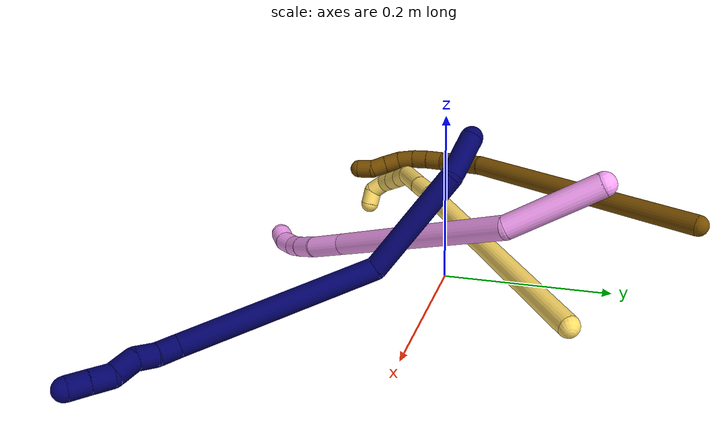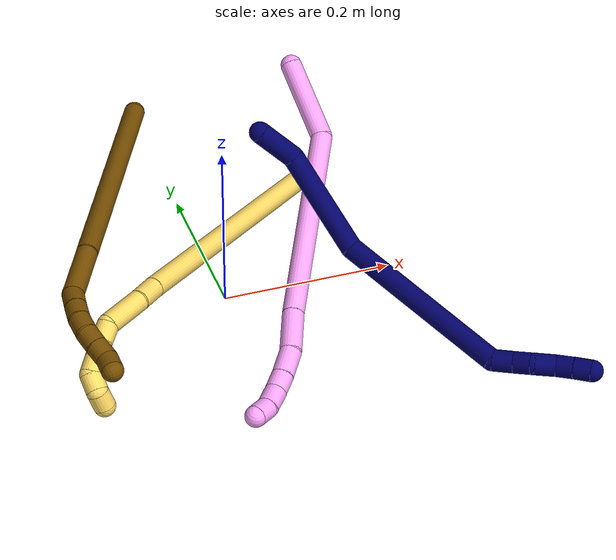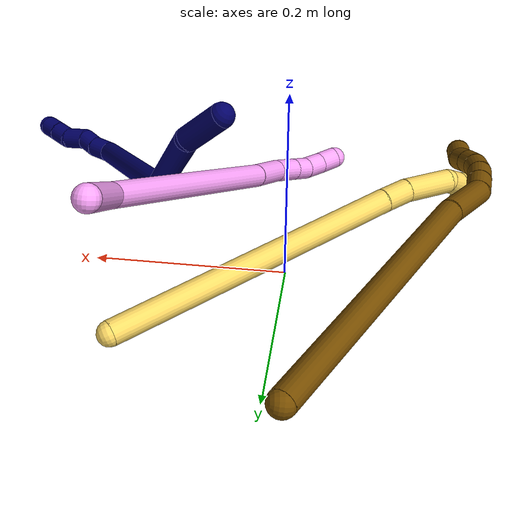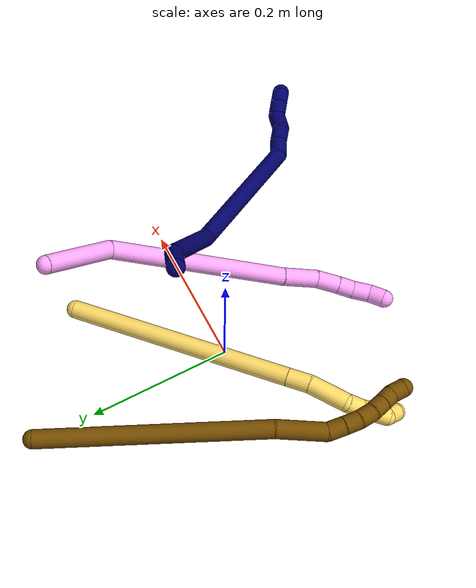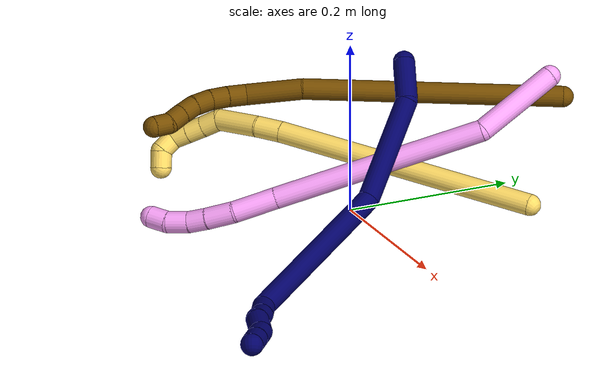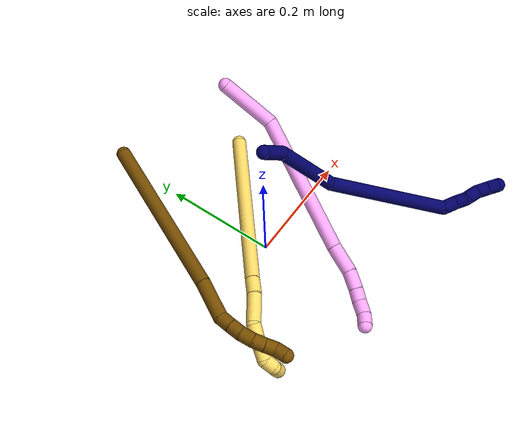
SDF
<sdf version="1.7">
 <world name="default">
  <model name="bin">
   <static>1</static>
   <link name="bottom">
    <collision name="collision-bottom">
     <pose>0 0 -0.01 0 -0 0</pose>
     <geometry><box><size>0.8 0.6 0.02</size></box></geometry>
     <surface>
      <friction><ode><mu>100</mu><mu2>100</mu2></ode></friction>
      <contact><collide_bitmask>65535</collide_bitmask></contact>
     </surface>
    </collision>
   </link>
   <link name="west_wall">
    <collision name="collision-west_wall">
     <pose>-0.41 0 0.1 0 -0 0</pose>
     <geometry><box><size>0.02 0.6 0.2</size></box></geometry>
     <surface>
      <friction><ode><mu>100</mu><mu2>100</mu2></ode></friction>
      <contact><collide_bitmask>65535</collide_bitmask></contact>
     </surface>
    </collision>
   </link>
   <link name="east_wall">
    <collision name="collision-east_wall">
     <pose>0.41 0 0.1 0 -0 0</pose>
     <geometry><box><size>0.02 0.6 0.2</size></box></geometry>
     <surface>
      <friction><ode><mu>100</mu><mu2>100</mu2></ode></friction>
      <contact><collide_bitmask>65535</collide_bitmask></contact>
     </surface>
    </collision>
   </link>
   <link name="south_wall">
    <collision name="collision-south_wall">
     <pose>0 -0.31 0.1 0 -0 0</pose>
     <geometry><box><size>0.8 0.02 0.2</size></box></geometry>
     <surface>
      <friction><ode><mu>100</mu><mu2>100</mu2></ode></friction>
      <contact><collide_bitmask>65535</collide_bitmask></contact>
     </surface>
    </collision>
   </link>
   <link name="north_wall">
    <collision name="collision-north_wall">
     <pose>0 0.31 0.1 0 -0 0</pose>
     <geometry><box><size>0.8 0.02 0.2</size></box></geometry>
     <surface>
      <friction><ode><mu>100</mu><mu2>100</mu2></ode></friction>
      <contact><collide_bitmask>65535</collide_bitmask></contact>
     </surface>
    </collision>
   </link>
  </model>
  <model name="4">
   <static>0</static>
   <link name="4">
    <collision name="collision-cylinder-e_1_1_4">
     <pose>0.004976 -0.049783 -0.00654 1.70141 0.098777 0.112574</pose>
     <geometry><cylinder><radius>0.0125</radius><length>0.100913</length></cylinder></geometry>
     <surface>
      <friction><ode><mu>1.16</mu><mu2>1.16</mu2><slip1>0</slip1><slip2>0</slip2></ode></friction>
      <contact><ode><kp>1e+06</kp><kd>1</kd><max_vel>0</max_vel><min_depth>0.001</min_depth></ode></contact>
     </surface>
    </collision>
    <visual name="visual-cylinder-e_1_1_4">
     <pose>0.004976 -0.049783 -0.00654 1.70141 0.098777 0.112574</pose>
     <geometry><cylinder><radius>0.0125</radius><length>0.100913</length></cylinder></geometry>
     <material><ambient>1 0.65098 0.996078 1</ambient></material>
    </visual>
    <collision name="collision-cylinder-e_2_4_5">
     <pose>-0.039783 -0.212521 -0.011963 1.56092 -0.41474 -0.410777</pose>
     <geometry><cylinder><radius>0.0125</radius><length>0.246849</length></cylinder></geometry>
     <surface>
      <friction><ode><mu>1.16</mu><mu2>1.16</mu2><slip1>0</slip1><slip2>0</slip2></ode></friction>
      <contact><ode><kp>1e+06</kp><kd>1</kd><max_vel>0</max_vel><min_depth>0.001</min_depth></ode></contact>
     </surface>
    </collision>
    <visual name="visual-cylinder-e_2_4_5">
     <pose>-0.039783 -0.212521 -0.011963 1.56092 -0.41474 -0.410777</pose>
     <geometry><cylinder><radius>0.0125</radius><length>0.246849</length></cylinder></geometry>
     <material><ambient>1 0.65098 0.996078 1</ambient></material>
    </visual>
    <collision name="collision-cylinder-e_3_5_6">
     <pose>-0.097735 -0.349049 -0.009866 1.52921 -0.335197 -0.32178</pose>
     <geometry><cylinder><radius>0.0125</radius><length>0.049968</length></cylinder></geometry>
     <surface>
      <friction><ode><mu>1.16</mu><mu2>1.16</mu2><slip1>0</slip1><slip2>0</slip2></ode></friction>
      <contact><ode><kp>1e+06</kp><kd>1</kd><max_vel>0</max_vel><min_depth>0.001</min_depth></ode></contact>
     </surface>
    </collision>
    <visual name="visual-cylinder-e_3_5_6">
     <pose>-0.097735 -0.349049 -0.009866 1.52921 -0.335197 -0.32178</pose>
     <geometry><cylinder><radius>0.0125</radius><length>0.049968</length></cylinder></geometry>
     <material><ambient>1 0.65098 0.996078 1</ambient></material>
    </visual>
    <collision name="collision-cylinder-e_4_6_7">
     <pose>-0.114601 -0.386536 -0.008553 1.54688 -0.555914 -0.543418</pose>
     <geometry><cylinder><radius>0.0125</radius><length>0.032769</length></cylinder></geometry>
     <surface>
      <friction><ode><mu>1.16</mu><mu2>1.16</mu2><slip1>0</slip1><slip2>0</slip2></ode></friction>
      <contact><ode><kp>1e+06</kp><kd>1</kd><max_vel>0</max_vel><min_depth>0.001</min_depth></ode></contact>
     </surface>
    </collision>
    <visual name="visual-cylinder-e_4_6_7">
     <pose>-0.114601 -0.386536 -0.008553 1.54688 -0.555914 -0.543418</pose>
     <geometry><cylinder><radius>0.0125</radius><length>0.032769</length></cylinder></geometry>
     <material><ambient>1 0.65098 0.996078 1</ambient></material>
    </visual>
    <collision name="collision-cylinder-e_5_7_8">
     <pose>-0.129799 -0.409412 -0.007817 1.52594 -0.630722 -0.604736</pose>
     <geometry><cylinder><radius>0.0125</radius><length>0.022219</length></cylinder></geometry>
     <surface>
      <friction><ode><mu>1.16</mu><mu2>1.16</mu2><slip1>0</slip1><slip2>0</slip2></ode></friction>
      <contact><ode><kp>1e+06</kp><kd>1</kd><max_vel>0</max_vel><min_depth>0.001</min_depth></ode></contact>
     </surface>
    </collision>
    <visual name="visual-cylinder-e_5_7_8">
     <pose>-0.129799 -0.409412 -0.007817 1.52594 -0.630722 -0.604736</pose>
     <geometry><cylinder><radius>0.0125</radius><length>0.022219</length></cylinder></geometry>
     <material><ambient>1 0.65098 0.996078 1</ambient></material>
    </visual>
    <collision name="collision-cylinder-e_6_8_9">
     <pose>-0.143971 -0.428289 -0.004565 1.29086 -0.636322 -0.486205</pose>
     <geometry><cylinder><radius>0.0125</radius><length>0.025649</length></cylinder></geometry>
     <surface>
      <friction><ode><mu>1.16</mu><mu2>1.16</mu2><slip1>0</slip1><slip2>0</slip2></ode></friction>
      <contact><ode><kp>1e+06</kp><kd>1</kd><max_vel>0</max_vel><min_depth>0.001</min_depth></ode></contact>
     </surface>
    </collision>
    <visual name="visual-cylinder-e_6_8_9">
     <pose>-0.143971 -0.428289 -0.004565 1.29086 -0.636322 -0.486205</pose>
     <geometry><cylinder><radius>0.0125</radius><length>0.025649</length></cylinder></geometry>
     <material><ambient>1 0.65098 0.996078 1</ambient></material>
    </visual>
    <collision name="collision-cylinder-e_7_9_2">
     <pose>-0.159887 -0.443947 0.002181 0.974889 -0.874001 -0.485485</pose>
     <geometry><cylinder><radius>0.0125</radius><length>0.021632</length></cylinder></geometry>
     <surface>
      <friction><ode><mu>1.16</mu><mu2>1.16</mu2><slip1>0</slip1><slip2>0</slip2></ode></friction>
      <contact><ode><kp>1e+06</kp><kd>1</kd><max_vel>0</max_vel><min_depth>0.001</min_depth></ode></contact>
     </surface>
    </collision>
    <visual name="visual-cylinder-e_7_9_2">
     <pose>-0.159887 -0.443947 0.002181 0.974889 -0.874001 -0.485485</pose>
     <geometry><cylinder><radius>0.0125</radius><length>0.021632</length></cylinder></geometry>
     <material><ambient>1 0.65098 0.996078 1</ambient></material>
    </visual>
    <collision name="collision-sphere-2">
     <pose>-0.168182 -0.449692 0.006076 0 -0 0</pose>
     <geometry><sphere><radius>0.0125</radius></sphere></geometry>
     <surface>
      <friction><ode><mu>1.16</mu><mu2>1.16</mu2><slip1>0</slip1><slip2>0</slip2></ode></friction>
      <contact><ode><kp>1e+06</kp><kd>1</kd><max_vel>0</max_vel><min_depth>0.001</min_depth></ode></contact>
     </surface>
    </collision>
    <visual name="visual-sphere-2">
     <pose>-0.168182 -0.449692 0.006076 0 -0 0</pose>
     <geometry><sphere><radius>0.0125</radius></sphere></geometry>
     <material><ambient>1 0.65098 0.996078 1</ambient></material>
    </visual>
    <collision name="collision-sphere-9">
     <pose>-0.151592 -0.438202 -0.001715 0 -0 0</pose>
     <geometry><sphere><radius>0.0125</radius></sphere></geometry>
     <surface>
      <friction><ode><mu>1.16</mu><mu2>1.16</mu2><slip1>0</slip1><slip2>0</slip2></ode></friction>
      <contact><ode><kp>1e+06</kp><kd>1</kd><max_vel>0</max_vel><min_depth>0.001</min_depth></ode></contact>
     </surface>
    </collision>
    <visual name="visual-sphere-9">
     <pose>-0.151592 -0.438202 -0.001715 0 -0 0</pose>
     <geometry><sphere><radius>0.0125</radius></sphere></geometry>
     <material><ambient>1 0.65098 0.996078 1</ambient></material>
    </visual>
    <collision name="collision-sphere-4">
     <pose>0.009952 -0.099565 -0.013079 0 -0 0</pose>
     <geometry><sphere><radius>0.0125</radius></sphere></geometry>
     <surface>
      <friction><ode><mu>1.16</mu><mu2>1.16</mu2><slip1>0</slip1><slip2>0</slip2></ode></friction>
      <contact><ode><kp>1e+06</kp><kd>1</kd><max_vel>0</max_vel><min_depth>0.001</min_depth></ode></contact>
     </surface>
    </collision>
    <visual name="visual-sphere-4">
     <pose>0.009952 -0.099565 -0.013079 0 -0 0</pose>
     <geometry><sphere><radius>0.0125</radius></sphere></geometry>
     <material><ambient>1 0.65098 0.996078 1</ambient></material>
    </visual>
    <collision name="collision-sphere-1">
     <geometry><sphere><radius>0.0125</radius></sphere></geometry>
     <surface>
      <friction><ode><mu>1.16</mu><mu2>1.16</mu2><slip1>0</slip1><slip2>0</slip2></ode></friction>
      <contact><ode><kp>1e+06</kp><kd>1</kd><max_vel>0</max_vel><min_depth>0.001</min_depth></ode></contact>
     </surface>
    </collision>
    <visual name="visual-sphere-1">
     <geometry><sphere><radius>0.0125</radius></sphere></geometry>
     <material><ambient>1 0.65098 0.996078 1</ambient></material>
    </visual>
    <collision name="collision-sphere-8">
     <pose>-0.13635 -0.418376 -0.007415 0 -0 0</pose>
     <geometry><sphere><radius>0.0125</radius></sphere></geometry>
     <surface>
      <friction><ode><mu>1.16</mu><mu2>1.16</mu2><slip1>0</slip1><slip2>0</slip2></ode></friction>
      <contact><ode><kp>1e+06</kp><kd>1</kd><max_vel>0</max_vel><min_depth>0.001</min_depth></ode></contact>
     </surface>
    </collision>
    <visual name="visual-sphere-8">
     <pose>-0.13635 -0.418376 -0.007415 0 -0 0</pose>
     <geometry><sphere><radius>0.0125</radius></sphere></geometry>
     <material><ambient>1 0.65098 0.996078 1</ambient></material>
    </visual>
    <collision name="collision-sphere-5">
     <pose>-0.089517 -0.325476 -0.010847 0 -0 0</pose>
     <geometry><sphere><radius>0.0125</radius></sphere></geometry>
     <surface>
      <friction><ode><mu>1.16</mu><mu2>1.16</mu2><slip1>0</slip1><slip2>0</slip2></ode></friction>
      <contact><ode><kp>1e+06</kp><kd>1</kd><max_vel>0</max_vel><min_depth>0.001</min_depth></ode></contact>
     </surface>
    </collision>
    <visual name="visual-sphere-5">
     <pose>-0.089517 -0.325476 -0.010847 0 -0 0</pose>
     <geometry><sphere><radius>0.0125</radius></sphere></geometry>
     <material><ambient>1 0.65098 0.996078 1</ambient></material>
    </visual>
    <collision name="collision-sphere-6">
     <pose>-0.105954 -0.372622 -0.008885 0 -0 0</pose>
     <geometry><sphere><radius>0.0125</radius></sphere></geometry>
     <surface>
      <friction><ode><mu>1.16</mu><mu2>1.16</mu2><slip1>0</slip1><slip2>0</slip2></ode></friction>
      <contact><ode><kp>1e+06</kp><kd>1</kd><max_vel>0</max_vel><min_depth>0.001</min_depth></ode></contact>
     </surface>
    </collision>
    <visual name="visual-sphere-6">
     <pose>-0.105954 -0.372622 -0.008885 0 -0 0</pose>
     <geometry><sphere><radius>0.0125</radius></sphere></geometry>
     <material><ambient>1 0.65098 0.996078 1</ambient></material>
    </visual>
    <collision name="collision-sphere-7">
     <pose>-0.123247 -0.400449 -0.00822 0 -0 0</pose>
     <geometry><sphere><radius>0.0125</radius></sphere></geometry>
     <surface>
      <friction><ode><mu>1.16</mu><mu2>1.16</mu2><slip1>0</slip1><slip2>0</slip2></ode></friction>
      <contact><ode><kp>1e+06</kp><kd>1</kd><max_vel>0</max_vel><min_depth>0.001</min_depth></ode></contact>
     </surface>
    </collision>
    <visual name="visual-sphere-7">
     <pose>-0.123247 -0.400449 -0.00822 0 -0 0</pose>
     <geometry><sphere><radius>0.0125</radius></sphere></geometry>
     <material><ambient>1 0.65098 0.996078 1</ambient></material>
    </visual>
    <inertial>
     <pose>-0.055985 -0.234556 -0.00926 0 -0 0</pose>
     <mass>0.5</mass>
     <inertia>
      <ixx>0.000694</ixx>
      <ixy>0</ixy>
      <ixz>0</ixz>
      <iyy>-0.000284</iyy>
      <iyz>0</iyz>
      <izz>0.001774</izz>
     </inertia>
    </inertial>
   </link>
   <pose>0.141756 0.181719 0.181929 0.375271 -0.034048 -0.038311</pose>
  </model>
  <model name="5">
   <static>0</static>
   <link name="5">
    <collision name="collision-cylinder-e_1_1_4">
     <pose>-0.035204 -0.045229 0.146288 0.299854 -0.225986 -0.03428</pose>
     <geometry><cylinder><radius>0.0125</radius><length>0.31423</length></cylinder></geometry>
     <surface>
      <friction><ode><mu>1.16</mu><mu2>1.16</mu2><slip1>0</slip1><slip2>0</slip2></ode></friction>
      <contact><ode><kp>1e+06</kp><kd>1</kd><max_vel>0</max_vel><min_depth>0.001</min_depth></ode></contact>
     </surface>
    </collision>
    <visual name="visual-cylinder-e_1_1_4">
     <pose>-0.035204 -0.045229 0.146288 0.299854 -0.225986 -0.03428</pose>
     <geometry><cylinder><radius>0.0125</radius><length>0.31423</length></cylinder></geometry>
     <material><ambient>1 0.858824 0.4 1</ambient></material>
    </visual>
    <collision name="collision-cylinder-e_2_4_5">
     <pose>-0.074577 -0.095113 0.30638 0.325244 -0.278676 -0.046013</pose>
     <geometry><cylinder><radius>0.0125</radius><length>0.030305</length></cylinder></geometry>
     <surface>
      <friction><ode><mu>1.16</mu><mu2>1.16</mu2><slip1>0</slip1><slip2>0</slip2></ode></friction>
      <contact><ode><kp>1e+06</kp><kd>1</kd><max_vel>0</max_vel><min_depth>0.001</min_depth></ode></contact>
     </surface>
    </collision>
    <visual name="visual-cylinder-e_2_4_5">
     <pose>-0.074577 -0.095113 0.30638 0.325244 -0.278676 -0.046013</pose>
     <geometry><cylinder><radius>0.0125</radius><length>0.030305</length></cylinder></geometry>
     <material><ambient>1 0.858824 0.4 1</ambient></material>
    </visual>
    <collision name="collision-cylinder-e_3_5_6">
     <pose>-0.088453 -0.104108 0.344292 0.178155 -0.37735 -0.034105</pose>
     <geometry><cylinder><radius>0.0125</radius><length>0.052697</length></cylinder></geometry>
     <surface>
      <friction><ode><mu>1.16</mu><mu2>1.16</mu2><slip1>0</slip1><slip2>0</slip2></ode></friction>
      <contact><ode><kp>1e+06</kp><kd>1</kd><max_vel>0</max_vel><min_depth>0.001</min_depth></ode></contact>
     </surface>
    </collision>
    <visual name="visual-cylinder-e_3_5_6">
     <pose>-0.088453 -0.104108 0.344292 0.178155 -0.37735 -0.034105</pose>
     <geometry><cylinder><radius>0.0125</radius><length>0.052697</length></cylinder></geometry>
     <material><ambient>1 0.858824 0.4 1</ambient></material>
    </visual>
    <collision name="collision-cylinder-e_4_6_7">
     <pose>-0.106264 -0.112085 0.374733 0.521065 -0.837156 -0.236094</pose>
     <geometry><cylinder><radius>0.0125</radius><length>0.021817</length></cylinder></geometry>
     <surface>
      <friction><ode><mu>1.16</mu><mu2>1.16</mu2><slip1>0</slip1><slip2>0</slip2></ode></friction>
      <contact><ode><kp>1e+06</kp><kd>1</kd><max_vel>0</max_vel><min_depth>0.001</min_depth></ode></contact>
     </surface>
    </collision>
    <visual name="visual-cylinder-e_4_6_7">
     <pose>-0.106264 -0.112085 0.374733 0.521065 -0.837156 -0.236094</pose>
     <geometry><cylinder><radius>0.0125</radius><length>0.021817</length></cylinder></geometry>
     <material><ambient>1 0.858824 0.4 1</ambient></material>
    </visual>
    <collision name="collision-cylinder-e_5_7_8">
     <pose>-0.121509 -0.119978 0.386845 0.635078 -0.783064 -0.269726</pose>
     <geometry><cylinder><radius>0.0125</radius><length>0.020249</length></cylinder></geometry>
     <surface>
      <friction><ode><mu>1.16</mu><mu2>1.16</mu2><slip1>0</slip1><slip2>0</slip2></ode></friction>
      <contact><ode><kp>1e+06</kp><kd>1</kd><max_vel>0</max_vel><min_depth>0.001</min_depth></ode></contact>
     </surface>
    </collision>
    <visual name="visual-cylinder-e_5_7_8">
     <pose>-0.121509 -0.119978 0.386845 0.635078 -0.783064 -0.269726</pose>
     <geometry><cylinder><radius>0.0125</radius><length>0.020249</length></cylinder></geometry>
     <material><ambient>1 0.858824 0.4 1</ambient></material>
    </visual>
    <collision name="collision-cylinder-e_6_8_9">
     <pose>-0.135799 -0.128398 0.398508 0.615471 -0.781109 -0.260227</pose>
     <geometry><cylinder><radius>0.0125</radius><length>0.020306</length></cylinder></geometry>
     <surface>
      <friction><ode><mu>1.16</mu><mu2>1.16</mu2><slip1>0</slip1><slip2>0</slip2></ode></friction>
      <contact><ode><kp>1e+06</kp><kd>1</kd><max_vel>0</max_vel><min_depth>0.001</min_depth></ode></contact>
     </surface>
    </collision>
    <visual name="visual-cylinder-e_6_8_9">
     <pose>-0.135799 -0.128398 0.398508 0.615471 -0.781109 -0.260227</pose>
     <geometry><cylinder><radius>0.0125</radius><length>0.020306</length></cylinder></geometry>
     <material><ambient>1 0.858824 0.4 1</ambient></material>
    </visual>
    <collision name="collision-cylinder-e_7_9_10">
     <pose>-0.150032 -0.139849 0.404206 1.59672 -0.770976 -0.789215</pose>
     <geometry><cylinder><radius>0.0125</radius><length>0.020333</length></cylinder></geometry>
     <surface>
      <friction><ode><mu>1.16</mu><mu2>1.16</mu2><slip1>0</slip1><slip2>0</slip2></ode></friction>
      <contact><ode><kp>1e+06</kp><kd>1</kd><max_vel>0</max_vel><min_depth>0.001</min_depth></ode></contact>
     </surface>
    </collision>
    <visual name="visual-cylinder-e_7_9_10">
     <pose>-0.150032 -0.139849 0.404206 1.59672 -0.770976 -0.789215</pose>
     <geometry><cylinder><radius>0.0125</radius><length>0.020333</length></cylinder></geometry>
     <material><ambient>1 0.858824 0.4 1</ambient></material>
    </visual>
    <collision name="collision-cylinder-e_8_10_2">
     <pose>-0.165501 -0.148914 0.398804 2.81326 -0.989672 -2.54588</pose>
     <geometry><cylinder><radius>0.0125</radius><length>0.020063</length></cylinder></geometry>
     <surface>
      <friction><ode><mu>1.16</mu><mu2>1.16</mu2><slip1>0</slip1><slip2>0</slip2></ode></friction>
      <contact><ode><kp>1e+06</kp><kd>1</kd><max_vel>0</max_vel><min_depth>0.001</min_depth></ode></contact>
     </surface>
    </collision>
    <visual name="visual-cylinder-e_8_10_2">
     <pose>-0.165501 -0.148914 0.398804 2.81326 -0.989672 -2.54588</pose>
     <geometry><cylinder><radius>0.0125</radius><length>0.020063</length></cylinder></geometry>
     <material><ambient>1 0.858824 0.4 1</ambient></material>
    </visual>
    <collision name="collision-sphere-2">
     <pose>-0.173886 -0.15069 0.393591 0 -0 0</pose>
     <geometry><sphere><radius>0.0125</radius></sphere></geometry>
     <surface>
      <friction><ode><mu>1.16</mu><mu2>1.16</mu2><slip1>0</slip1><slip2>0</slip2></ode></friction>
      <contact><ode><kp>1e+06</kp><kd>1</kd><max_vel>0</max_vel><min_depth>0.001</min_depth></ode></contact>
     </surface>
    </collision>
    <visual name="visual-sphere-2">
     <pose>-0.173886 -0.15069 0.393591 0 -0 0</pose>
     <geometry><sphere><radius>0.0125</radius></sphere></geometry>
     <material><ambient>1 0.858824 0.4 1</ambient></material>
    </visual>
    <collision name="collision-sphere-10">
     <pose>-0.157116 -0.147139 0.404017 0 -0 0</pose>
     <geometry><sphere><radius>0.0125</radius></sphere></geometry>
     <surface>
      <friction><ode><mu>1.16</mu><mu2>1.16</mu2><slip1>0</slip1><slip2>0</slip2></ode></friction>
      <contact><ode><kp>1e+06</kp><kd>1</kd><max_vel>0</max_vel><min_depth>0.001</min_depth></ode></contact>
     </surface>
    </collision>
    <visual name="visual-sphere-10">
     <pose>-0.157116 -0.147139 0.404017 0 -0 0</pose>
     <geometry><sphere><radius>0.0125</radius></sphere></geometry>
     <material><ambient>1 0.858824 0.4 1</ambient></material>
    </visual>
    <collision name="collision-sphere-9">
     <pose>-0.142948 -0.13256 0.404395 0 -0 0</pose>
     <geometry><sphere><radius>0.0125</radius></sphere></geometry>
     <surface>
      <friction><ode><mu>1.16</mu><mu2>1.16</mu2><slip1>0</slip1><slip2>0</slip2></ode></friction>
      <contact><ode><kp>1e+06</kp><kd>1</kd><max_vel>0</max_vel><min_depth>0.001</min_depth></ode></contact>
     </surface>
    </collision>
    <visual name="visual-sphere-9">
     <pose>-0.142948 -0.13256 0.404395 0 -0 0</pose>
     <geometry><sphere><radius>0.0125</radius></sphere></geometry>
     <material><ambient>1 0.858824 0.4 1</ambient></material>
    </visual>
    <collision name="collision-sphere-4">
     <pose>-0.070409 -0.090457 0.292576 0 -0 0</pose>
     <geometry><sphere><radius>0.0125</radius></sphere></geometry>
     <surface>
      <friction><ode><mu>1.16</mu><mu2>1.16</mu2><slip1>0</slip1><slip2>0</slip2></ode></friction>
      <contact><ode><kp>1e+06</kp><kd>1</kd><max_vel>0</max_vel><min_depth>0.001</min_depth></ode></contact>
     </surface>
    </collision>
    <visual name="visual-sphere-4">
     <pose>-0.070409 -0.090457 0.292576 0 -0 0</pose>
     <geometry><sphere><radius>0.0125</radius></sphere></geometry>
     <material><ambient>1 0.858824 0.4 1</ambient></material>
    </visual>
    <collision name="collision-sphere-1">
     <geometry><sphere><radius>0.0125</radius></sphere></geometry>
     <surface>
      <friction><ode><mu>1.16</mu><mu2>1.16</mu2><slip1>0</slip1><slip2>0</slip2></ode></friction>
      <contact><ode><kp>1e+06</kp><kd>1</kd><max_vel>0</max_vel><min_depth>0.001</min_depth></ode></contact>
     </surface>
    </collision>
    <visual name="visual-sphere-1">
     <geometry><sphere><radius>0.0125</radius></sphere></geometry>
     <material><ambient>1 0.858824 0.4 1</ambient></material>
    </visual>
    <collision name="collision-sphere-8">
     <pose>-0.128651 -0.124235 0.392621 0 -0 0</pose>
     <geometry><sphere><radius>0.0125</radius></sphere></geometry>
     <surface>
      <friction><ode><mu>1.16</mu><mu2>1.16</mu2><slip1>0</slip1><slip2>0</slip2></ode></friction>
      <contact><ode><kp>1e+06</kp><kd>1</kd><max_vel>0</max_vel><min_depth>0.001</min_depth></ode></contact>
     </surface>
    </collision>
    <visual name="visual-sphere-8">
     <pose>-0.128651 -0.124235 0.392621 0 -0 0</pose>
     <geometry><sphere><radius>0.0125</radius></sphere></geometry>
     <material><ambient>1 0.858824 0.4 1</ambient></material>
    </visual>
    <collision name="collision-sphere-5">
     <pose>-0.078745 -0.099768 0.320185 0 -0 0</pose>
     <geometry><sphere><radius>0.0125</radius></sphere></geometry>
     <surface>
      <friction><ode><mu>1.16</mu><mu2>1.16</mu2><slip1>0</slip1><slip2>0</slip2></ode></friction>
      <contact><ode><kp>1e+06</kp><kd>1</kd><max_vel>0</max_vel><min_depth>0.001</min_depth></ode></contact>
     </surface>
    </collision>
    <visual name="visual-sphere-5">
     <pose>-0.078745 -0.099768 0.320185 0 -0 0</pose>
     <geometry><sphere><radius>0.0125</radius></sphere></geometry>
     <material><ambient>1 0.858824 0.4 1</ambient></material>
    </visual>
    <collision name="collision-sphere-6">
     <pose>-0.098162 -0.108449 0.368398 0 -0 0</pose>
     <geometry><sphere><radius>0.0125</radius></sphere></geometry>
     <surface>
      <friction><ode><mu>1.16</mu><mu2>1.16</mu2><slip1>0</slip1><slip2>0</slip2></ode></friction>
      <contact><ode><kp>1e+06</kp><kd>1</kd><max_vel>0</max_vel><min_depth>0.001</min_depth></ode></contact>
     </surface>
    </collision>
    <visual name="visual-sphere-6">
     <pose>-0.098162 -0.108449 0.368398 0 -0 0</pose>
     <geometry><sphere><radius>0.0125</radius></sphere></geometry>
     <material><ambient>1 0.858824 0.4 1</ambient></material>
    </visual>
    <collision name="collision-sphere-7">
     <pose>-0.114366 -0.115721 0.381068 0 -0 0</pose>
     <geometry><sphere><radius>0.0125</radius></sphere></geometry>
     <surface>
      <friction><ode><mu>1.16</mu><mu2>1.16</mu2><slip1>0</slip1><slip2>0</slip2></ode></friction>
      <contact><ode><kp>1e+06</kp><kd>1</kd><max_vel>0</max_vel><min_depth>0.001</min_depth></ode></contact>
     </surface>
    </collision>
    <visual name="visual-sphere-7">
     <pose>-0.114366 -0.115721 0.381068 0 -0 0</pose>
     <geometry><sphere><radius>0.0125</radius></sphere></geometry>
     <material><ambient>1 0.858824 0.4 1</ambient></material>
    </visual>
    <inertial>
     <pose>-0.063782 -0.071788 0.227434 0 -0 0</pose>
     <mass>0.5</mass>
     <inertia>
      <ixx>0.002447</ixx>
      <ixy>0</ixy>
      <ixz>0</ixz>
      <iyy>0.002409</iyy>
      <iyz>0</iyz>
      <izz>0.001379</izz>
     </inertia>
    </inertial>
   </link>
   <pose>0.141245 0.159436 0.029675 -0.339027 -1.21714 0.745286</pose>
  </model>
  <model name="7">
   <static>0</static>
   <link name="7">
    <collision name="collision-cylinder-e_1_1_4">
     <pose>-0.002164 -0.004342 0.02467 0.174209 -0.086162 -0.007529</pose>
     <geometry><cylinder><radius>0.0125</radius><length>0.050286</length></cylinder></geometry>
     <surface>
      <friction><ode><mu>1.16</mu><mu2>1.16</mu2><slip1>0</slip1><slip2>0</slip2></ode></friction>
      <contact><ode><kp>1e+06</kp><kd>1</kd><max_vel>0</max_vel><min_depth>0.001</min_depth></ode></contact>
     </surface>
    </collision>
    <visual name="visual-cylinder-e_1_1_4">
     <pose>-0.002164 -0.004342 0.02467 0.174209 -0.086162 -0.007529</pose>
     <geometry><cylinder><radius>0.0125</radius><length>0.050286</length></cylinder></geometry>
     <material><ambient>0.003922 0 0.403922 1</ambient></material>
    </visual>
    <collision name="collision-cylinder-e_2_4_5">
     <pose>0.017569 -0.015424 0.106721 0.116925 0.362274 0.021438</pose>
     <geometry><cylinder><radius>0.0125</radius><length>0.123569</length></cylinder></geometry>
     <surface>
      <friction><ode><mu>1.16</mu><mu2>1.16</mu2><slip1>0</slip1><slip2>0</slip2></ode></friction>
      <contact><ode><kp>1e+06</kp><kd>1</kd><max_vel>0</max_vel><min_depth>0.001</min_depth></ode></contact>
     </surface>
    </collision>
    <visual name="visual-cylinder-e_2_4_5">
     <pose>0.017569 -0.015424 0.106721 0.116925 0.362274 0.021438</pose>
     <geometry><cylinder><radius>0.0125</radius><length>0.123569</length></cylinder></geometry>
     <material><ambient>0.003922 0 0.403922 1</ambient></material>
    </visual>
    <collision name="collision-cylinder-e_3_5_6">
     <pose>0.082151 -0.085525 0.237678 0.710934 0.414171 0.155676</pose>
     <geometry><cylinder><radius>0.0125</radius><length>0.212135</length></cylinder></geometry>
     <surface>
      <friction><ode><mu>1.16</mu><mu2>1.16</mu2><slip1>0</slip1><slip2>0</slip2></ode></friction>
      <contact><ode><kp>1e+06</kp><kd>1</kd><max_vel>0</max_vel><min_depth>0.001</min_depth></ode></contact>
     </surface>
    </collision>
    <visual name="visual-cylinder-e_3_5_6">
     <pose>0.082151 -0.085525 0.237678 0.710934 0.414171 0.155676</pose>
     <geometry><cylinder><radius>0.0125</radius><length>0.212135</length></cylinder></geometry>
     <material><ambient>0.003922 0 0.403922 1</ambient></material>
    </visual>
    <collision name="collision-cylinder-e_4_6_7">
     <pose>0.122992 -0.158576 0.318605 0.921851 -0.150438 -0.074814</pose>
     <geometry><cylinder><radius>0.0125</radius><length>0.024601</length></cylinder></geometry>
     <surface>
      <friction><ode><mu>1.16</mu><mu2>1.16</mu2><slip1>0</slip1><slip2>0</slip2></ode></friction>
      <contact><ode><kp>1e+06</kp><kd>1</kd><max_vel>0</max_vel><min_depth>0.001</min_depth></ode></contact>
     </surface>
    </collision>
    <visual name="visual-cylinder-e_4_6_7">
     <pose>0.122992 -0.158576 0.318605 0.921851 -0.150438 -0.074814</pose>
     <geometry><cylinder><radius>0.0125</radius><length>0.024601</length></cylinder></geometry>
     <material><ambient>0.003922 0 0.403922 1</ambient></material>
    </visual>
    <collision name="collision-cylinder-e_5_7_8">
     <pose>0.120952 -0.177574 0.330775 1.09301 -0.018794 -0.011433</pose>
     <geometry><cylinder><radius>0.0125</radius><length>0.020969</length></cylinder></geometry>
     <surface>
      <friction><ode><mu>1.16</mu><mu2>1.16</mu2><slip1>0</slip1><slip2>0</slip2></ode></friction>
      <contact><ode><kp>1e+06</kp><kd>1</kd><max_vel>0</max_vel><min_depth>0.001</min_depth></ode></contact>
     </surface>
    </collision>
    <visual name="visual-cylinder-e_5_7_8">
     <pose>0.120952 -0.177574 0.330775 1.09301 -0.018794 -0.011433</pose>
     <geometry><cylinder><radius>0.0125</radius><length>0.020969</length></cylinder></geometry>
     <material><ambient>0.003922 0 0.403922 1</ambient></material>
    </visual>
    <collision name="collision-cylinder-e_6_8_9">
     <pose>0.116265 -0.194939 0.345146 0.700727 -0.344948 -0.127151</pose>
     <geometry><cylinder><radius>0.0125</radius><length>0.026555</length></cylinder></geometry>
     <surface>
      <friction><ode><mu>1.16</mu><mu2>1.16</mu2><slip1>0</slip1><slip2>0</slip2></ode></friction>
      <contact><ode><kp>1e+06</kp><kd>1</kd><max_vel>0</max_vel><min_depth>0.001</min_depth></ode></contact>
     </surface>
    </collision>
    <visual name="visual-cylinder-e_6_8_9">
     <pose>0.116265 -0.194939 0.345146 0.700727 -0.344948 -0.127151</pose>
     <geometry><cylinder><radius>0.0125</radius><length>0.026555</length></cylinder></geometry>
     <material><ambient>0.003922 0 0.403922 1</ambient></material>
    </visual>
    <collision name="collision-cylinder-e_7_9_10">
     <pose>0.111487 -0.212145 0.360394 1.01386 -0.026707 -0.014832</pose>
     <geometry><cylinder><radius>0.0125</radius><length>0.021564</length></cylinder></geometry>
     <surface>
      <friction><ode><mu>1.16</mu><mu2>1.16</mu2><slip1>0</slip1><slip2>0</slip2></ode></friction>
      <contact><ode><kp>1e+06</kp><kd>1</kd><max_vel>0</max_vel><min_depth>0.001</min_depth></ode></contact>
     </surface>
    </collision>
    <visual name="visual-cylinder-e_7_9_10">
     <pose>0.111487 -0.212145 0.360394 1.01386 -0.026707 -0.014832</pose>
     <geometry><cylinder><radius>0.0125</radius><length>0.021564</length></cylinder></geometry>
     <material><ambient>0.003922 0 0.403922 1</ambient></material>
    </visual>
    <collision name="collision-cylinder-e_8_10_2">
     <pose>0.111147 -0.229808 0.371638 0.993366 -0.005103 -0.002766</pose>
     <geometry><cylinder><radius>0.0125</radius><length>0.020322</length></cylinder></geometry>
     <surface>
      <friction><ode><mu>1.16</mu><mu2>1.16</mu2><slip1>0</slip1><slip2>0</slip2></ode></friction>
      <contact><ode><kp>1e+06</kp><kd>1</kd><max_vel>0</max_vel><min_depth>0.001</min_depth></ode></contact>
     </surface>
    </collision>
    <visual name="visual-cylinder-e_8_10_2">
     <pose>0.111147 -0.229808 0.371638 0.993366 -0.005103 -0.002766</pose>
     <geometry><cylinder><radius>0.0125</radius><length>0.020322</length></cylinder></geometry>
     <material><ambient>0.003922 0 0.403922 1</ambient></material>
    </visual>
    <collision name="collision-sphere-2">
     <pose>0.111096 -0.238321 0.377185 0 -0 0</pose>
     <geometry><sphere><radius>0.0125</radius></sphere></geometry>
     <surface>
      <friction><ode><mu>1.16</mu><mu2>1.16</mu2><slip1>0</slip1><slip2>0</slip2></ode></friction>
      <contact><ode><kp>1e+06</kp><kd>1</kd><max_vel>0</max_vel><min_depth>0.001</min_depth></ode></contact>
     </surface>
    </collision>
    <visual name="visual-sphere-2">
     <pose>0.111096 -0.238321 0.377185 0 -0 0</pose>
     <geometry><sphere><radius>0.0125</radius></sphere></geometry>
     <material><ambient>0.003922 0 0.403922 1</ambient></material>
    </visual>
    <collision name="collision-sphere-10">
     <pose>0.111199 -0.221294 0.366092 0 -0 0</pose>
     <geometry><sphere><radius>0.0125</radius></sphere></geometry>
     <surface>
      <friction><ode><mu>1.16</mu><mu2>1.16</mu2><slip1>0</slip1><slip2>0</slip2></ode></friction>
      <contact><ode><kp>1e+06</kp><kd>1</kd><max_vel>0</max_vel><min_depth>0.001</min_depth></ode></contact>
     </surface>
    </collision>
    <visual name="visual-sphere-10">
     <pose>0.111199 -0.221294 0.366092 0 -0 0</pose>
     <geometry><sphere><radius>0.0125</radius></sphere></geometry>
     <material><ambient>0.003922 0 0.403922 1</ambient></material>
    </visual>
    <collision name="collision-sphere-9">
     <pose>0.111775 -0.202995 0.354697 0 -0 0</pose>
     <geometry><sphere><radius>0.0125</radius></sphere></geometry>
     <surface>
      <friction><ode><mu>1.16</mu><mu2>1.16</mu2><slip1>0</slip1><slip2>0</slip2></ode></friction>
      <contact><ode><kp>1e+06</kp><kd>1</kd><max_vel>0</max_vel><min_depth>0.001</min_depth></ode></contact>
     </surface>
    </collision>
    <visual name="visual-sphere-9">
     <pose>0.111775 -0.202995 0.354697 0 -0 0</pose>
     <geometry><sphere><radius>0.0125</radius></sphere></geometry>
     <material><ambient>0.003922 0 0.403922 1</ambient></material>
    </visual>
    <collision name="collision-sphere-4">
     <pose>-0.004327 -0.008684 0.049341 0 -0 0</pose>
     <geometry><sphere><radius>0.0125</radius></sphere></geometry>
     <surface>
      <friction><ode><mu>1.16</mu><mu2>1.16</mu2><slip1>0</slip1><slip2>0</slip2></ode></friction>
      <contact><ode><kp>1e+06</kp><kd>1</kd><max_vel>0</max_vel><min_depth>0.001</min_depth></ode></contact>
     </surface>
    </collision>
    <visual name="visual-sphere-4">
     <pose>-0.004327 -0.008684 0.049341 0 -0 0</pose>
     <geometry><sphere><radius>0.0125</radius></sphere></geometry>
     <material><ambient>0.003922 0 0.403922 1</ambient></material>
    </visual>
    <collision name="collision-sphere-1">
     <geometry><sphere><radius>0.0125</radius></sphere></geometry>
     <surface>
      <friction><ode><mu>1.16</mu><mu2>1.16</mu2><slip1>0</slip1><slip2>0</slip2></ode></friction>
      <contact><ode><kp>1e+06</kp><kd>1</kd><max_vel>0</max_vel><min_depth>0.001</min_depth></ode></contact>
     </surface>
    </collision>
    <visual name="visual-sphere-1">
     <geometry><sphere><radius>0.0125</radius></sphere></geometry>
     <material><ambient>0.003922 0 0.403922 1</ambient></material>
    </visual>
    <collision name="collision-sphere-8">
     <pose>0.120755 -0.186882 0.335595 0 -0 0</pose>
     <geometry><sphere><radius>0.0125</radius></sphere></geometry>
     <surface>
      <friction><ode><mu>1.16</mu><mu2>1.16</mu2><slip1>0</slip1><slip2>0</slip2></ode></friction>
      <contact><ode><kp>1e+06</kp><kd>1</kd><max_vel>0</max_vel><min_depth>0.001</min_depth></ode></contact>
     </surface>
    </collision>
    <visual name="visual-sphere-8">
     <pose>0.120755 -0.186882 0.335595 0 -0 0</pose>
     <geometry><sphere><radius>0.0125</radius></sphere></geometry>
     <material><ambient>0.003922 0 0.403922 1</ambient></material>
    </visual>
    <collision name="collision-sphere-5">
     <pose>0.039466 -0.022163 0.164101 0 -0 0</pose>
     <geometry><sphere><radius>0.0125</radius></sphere></geometry>
     <surface>
      <friction><ode><mu>1.16</mu><mu2>1.16</mu2><slip1>0</slip1><slip2>0</slip2></ode></friction>
      <contact><ode><kp>1e+06</kp><kd>1</kd><max_vel>0</max_vel><min_depth>0.001</min_depth></ode></contact>
     </surface>
    </collision>
    <visual name="visual-sphere-5">
     <pose>0.039466 -0.022163 0.164101 0 -0 0</pose>
     <geometry><sphere><radius>0.0125</radius></sphere></geometry>
     <material><ambient>0.003922 0 0.403922 1</ambient></material>
    </visual>
    <collision name="collision-sphere-6">
     <pose>0.124836 -0.148887 0.311256 0 -0 0</pose>
     <geometry><sphere><radius>0.0125</radius></sphere></geometry>
     <surface>
      <friction><ode><mu>1.16</mu><mu2>1.16</mu2><slip1>0</slip1><slip2>0</slip2></ode></friction>
      <contact><ode><kp>1e+06</kp><kd>1</kd><max_vel>0</max_vel><min_depth>0.001</min_depth></ode></contact>
     </surface>
    </collision>
    <visual name="visual-sphere-6">
     <pose>0.124836 -0.148887 0.311256 0 -0 0</pose>
     <geometry><sphere><radius>0.0125</radius></sphere></geometry>
     <material><ambient>0.003922 0 0.403922 1</ambient></material>
    </visual>
    <collision name="collision-sphere-7">
     <pose>0.121149 -0.168265 0.325955 0 -0 0</pose>
     <geometry><sphere><radius>0.0125</radius></sphere></geometry>
     <surface>
      <friction><ode><mu>1.16</mu><mu2>1.16</mu2><slip1>0</slip1><slip2>0</slip2></ode></friction>
      <contact><ode><kp>1e+06</kp><kd>1</kd><max_vel>0</max_vel><min_depth>0.001</min_depth></ode></contact>
     </surface>
    </collision>
    <visual name="visual-sphere-7">
     <pose>0.121149 -0.168265 0.325955 0 -0 0</pose>
     <geometry><sphere><radius>0.0125</radius></sphere></geometry>
     <material><ambient>0.003922 0 0.403922 1</ambient></material>
    </visual>
    <inertial>
     <pose>0.065603 -0.084626 0.208222 0 -0 0</pose>
     <mass>0.5</mass>
     <inertia>
      <ixx>0.001026</ixx>
      <ixy>0</ixy>
      <ixz>0</ixz>
      <iyy>0.000912</iyy>
      <iyz>0</iyz>
      <izz>0.000158</izz>
     </inertia>
    </inertial>
   </link>
   <pose>0.057159 0.040255 0.193277 -2.50222 0.191441 -2.22215</pose>
  </model>
  <model name="12">
   <static>0</static>
   <link name="12">
    <collision name="collision-cylinder-e_1_1_4">
     <pose>-0.038086 -0.115827 0.092221 0.898379 -0.251779 -0.121866</pose>
     <geometry><cylinder><radius>0.0125</radius><length>0.305753</length></cylinder></geometry>
     <surface>
      <friction><ode><mu>1.16</mu><mu2>1.16</mu2><slip1>0</slip1><slip2>0</slip2></ode></friction>
      <contact><ode><kp>1e+06</kp><kd>1</kd><max_vel>0</max_vel><min_depth>0.001</min_depth></ode></contact>
     </surface>
    </collision>
    <visual name="visual-cylinder-e_1_1_4">
     <pose>-0.038086 -0.115827 0.092221 0.898379 -0.251779 -0.121866</pose>
     <geometry><cylinder><radius>0.0125</radius><length>0.305753</length></cylinder></geometry>
     <material><ambient>0.466667 0.301961 0 1</ambient></material>
    </visual>
    <collision name="collision-cylinder-e_2_4_5">
     <pose>-0.088401 -0.253783 0.206664 0.783286 -0.371823 -0.155037</pose>
     <geometry><cylinder><radius>0.0125</radius><length>0.067321</length></cylinder></geometry>
     <surface>
      <friction><ode><mu>1.16</mu><mu2>1.16</mu2><slip1>0</slip1><slip2>0</slip2></ode></friction>
      <contact><ode><kp>1e+06</kp><kd>1</kd><max_vel>0</max_vel><min_depth>0.001</min_depth></ode></contact>
     </surface>
    </collision>
    <visual name="visual-cylinder-e_2_4_5">
     <pose>-0.088401 -0.253783 0.206664 0.783286 -0.371823 -0.155037</pose>
     <geometry><cylinder><radius>0.0125</radius><length>0.067321</length></cylinder></geometry>
     <material><ambient>0.466667 0.301961 0 1</ambient></material>
    </visual>
    <collision name="collision-cylinder-e_3_5_6">
     <pose>-0.105098 -0.285941 0.23265 1.2118 -0.395113 -0.275607</pose>
     <geometry><cylinder><radius>0.0125</radius><length>0.023215</length></cylinder></geometry>
     <surface>
      <friction><ode><mu>1.16</mu><mu2>1.16</mu2><slip1>0</slip1><slip2>0</slip2></ode></friction>
      <contact><ode><kp>1e+06</kp><kd>1</kd><max_vel>0</max_vel><min_depth>0.001</min_depth></ode></contact>
     </surface>
    </collision>
    <visual name="visual-cylinder-e_3_5_6">
     <pose>-0.105098 -0.285941 0.23265 1.2118 -0.395113 -0.275607</pose>
     <geometry><cylinder><radius>0.0125</radius><length>0.023215</length></cylinder></geometry>
     <material><ambient>0.466667 0.301961 0 1</ambient></material>
    </visual>
    <collision name="collision-cylinder-e_4_6_7">
     <pose>-0.114249 -0.30492 0.239489 1.23981 -0.459579 -0.330877</pose>
     <geometry><cylinder><radius>0.0125</radius><length>0.021117</length></cylinder></geometry>
     <surface>
      <friction><ode><mu>1.16</mu><mu2>1.16</mu2><slip1>0</slip1><slip2>0</slip2></ode></friction>
      <contact><ode><kp>1e+06</kp><kd>1</kd><max_vel>0</max_vel><min_depth>0.001</min_depth></ode></contact>
     </surface>
    </collision>
    <visual name="visual-cylinder-e_4_6_7">
     <pose>-0.114249 -0.30492 0.239489 1.23981 -0.459579 -0.330877</pose>
     <geometry><cylinder><radius>0.0125</radius><length>0.021117</length></cylinder></geometry>
     <material><ambient>0.466667 0.301961 0 1</ambient></material>
    </visual>
    <collision name="collision-cylinder-e_5_7_8">
     <pose>-0.125038 -0.322838 0.243959 1.41647 -0.592177 -0.511115</pose>
     <geometry><cylinder><radius>0.0125</radius><length>0.021878</length></cylinder></geometry>
     <surface>
      <friction><ode><mu>1.16</mu><mu2>1.16</mu2><slip1>0</slip1><slip2>0</slip2></ode></friction>
      <contact><ode><kp>1e+06</kp><kd>1</kd><max_vel>0</max_vel><min_depth>0.001</min_depth></ode></contact>
     </surface>
    </collision>
    <visual name="visual-cylinder-e_5_7_8">
     <pose>-0.125038 -0.322838 0.243959 1.41647 -0.592177 -0.511115</pose>
     <geometry><cylinder><radius>0.0125</radius><length>0.021878</length></cylinder></geometry>
     <material><ambient>0.466667 0.301961 0 1</ambient></material>
    </visual>
    <collision name="collision-cylinder-e_6_8_9">
     <pose>-0.138173 -0.339118 0.244967 1.62369 -0.764976 -0.802325</pose>
     <geometry><cylinder><radius>0.0125</radius><length>0.020299</length></cylinder></geometry>
     <surface>
      <friction><ode><mu>1.16</mu><mu2>1.16</mu2><slip1>0</slip1><slip2>0</slip2></ode></friction>
      <contact><ode><kp>1e+06</kp><kd>1</kd><max_vel>0</max_vel><min_depth>0.001</min_depth></ode></contact>
     </surface>
    </collision>
    <visual name="visual-cylinder-e_6_8_9">
     <pose>-0.138173 -0.339118 0.244967 1.62369 -0.764976 -0.802325</pose>
     <geometry><cylinder><radius>0.0125</radius><length>0.020299</length></cylinder></geometry>
     <material><ambient>0.466667 0.301961 0 1</ambient></material>
    </visual>
    <collision name="collision-cylinder-e_7_9_10">
     <pose>-0.152443 -0.353395 0.243675 1.70009 -0.800668 -0.897916</pose>
     <geometry><cylinder><radius>0.0125</radius><length>0.020178</length></cylinder></geometry>
     <surface>
      <friction><ode><mu>1.16</mu><mu2>1.16</mu2><slip1>0</slip1><slip2>0</slip2></ode></friction>
      <contact><ode><kp>1e+06</kp><kd>1</kd><max_vel>0</max_vel><min_depth>0.001</min_depth></ode></contact>
     </surface>
    </collision>
    <visual name="visual-cylinder-e_7_9_10">
     <pose>-0.152443 -0.353395 0.243675 1.70009 -0.800668 -0.897916</pose>
     <geometry><cylinder><radius>0.0125</radius><length>0.020178</length></cylinder></geometry>
     <material><ambient>0.466667 0.301961 0 1</ambient></material>
    </visual>
    <collision name="collision-cylinder-e_8_10_2">
     <pose>-0.164352 -0.369126 0.244722 1.35161 -0.479208 -0.386832</pose>
     <geometry><cylinder><radius>0.0125</radius><length>0.02024</length></cylinder></geometry>
     <surface>
      <friction><ode><mu>1.16</mu><mu2>1.16</mu2><slip1>0</slip1><slip2>0</slip2></ode></friction>
      <contact><ode><kp>1e+06</kp><kd>1</kd><max_vel>0</max_vel><min_depth>0.001</min_depth></ode></contact>
     </surface>
    </collision>
    <visual name="visual-cylinder-e_8_10_2">
     <pose>-0.164352 -0.369126 0.244722 1.35161 -0.479208 -0.386832</pose>
     <geometry><cylinder><radius>0.0125</radius><length>0.02024</length></cylinder></geometry>
     <material><ambient>0.466667 0.301961 0 1</ambient></material>
    </visual>
    <collision name="collision-sphere-2">
     <pose>-0.169018 -0.377891 0.246674 0 -0 0</pose>
     <geometry><sphere><radius>0.0125</radius></sphere></geometry>
     <surface>
      <friction><ode><mu>1.16</mu><mu2>1.16</mu2><slip1>0</slip1><slip2>0</slip2></ode></friction>
      <contact><ode><kp>1e+06</kp><kd>1</kd><max_vel>0</max_vel><min_depth>0.001</min_depth></ode></contact>
     </surface>
    </collision>
    <visual name="visual-sphere-2">
     <pose>-0.169018 -0.377891 0.246674 0 -0 0</pose>
     <geometry><sphere><radius>0.0125</radius></sphere></geometry>
     <material><ambient>0.466667 0.301961 0 1</ambient></material>
    </visual>
    <collision name="collision-sphere-10">
     <pose>-0.159686 -0.360361 0.242769 0 -0 0</pose>
     <geometry><sphere><radius>0.0125</radius></sphere></geometry>
     <surface>
      <friction><ode><mu>1.16</mu><mu2>1.16</mu2><slip1>0</slip1><slip2>0</slip2></ode></friction>
      <contact><ode><kp>1e+06</kp><kd>1</kd><max_vel>0</max_vel><min_depth>0.001</min_depth></ode></contact>
     </surface>
    </collision>
    <visual name="visual-sphere-10">
     <pose>-0.159686 -0.360361 0.242769 0 -0 0</pose>
     <geometry><sphere><radius>0.0125</radius></sphere></geometry>
     <material><ambient>0.466667 0.301961 0 1</ambient></material>
    </visual>
    <collision name="collision-sphere-9">
     <pose>-0.145201 -0.346429 0.24458 0 -0 0</pose>
     <geometry><sphere><radius>0.0125</radius></sphere></geometry>
     <surface>
      <friction><ode><mu>1.16</mu><mu2>1.16</mu2><slip1>0</slip1><slip2>0</slip2></ode></friction>
      <contact><ode><kp>1e+06</kp><kd>1</kd><max_vel>0</max_vel><min_depth>0.001</min_depth></ode></contact>
     </surface>
    </collision>
    <visual name="visual-sphere-9">
     <pose>-0.145201 -0.346429 0.24458 0 -0 0</pose>
     <geometry><sphere><radius>0.0125</radius></sphere></geometry>
     <material><ambient>0.466667 0.301961 0 1</ambient></material>
    </visual>
    <collision name="collision-sphere-4">
     <pose>-0.076171 -0.231654 0.184442 0 -0 0</pose>
     <geometry><sphere><radius>0.0125</radius></sphere></geometry>
     <surface>
      <friction><ode><mu>1.16</mu><mu2>1.16</mu2><slip1>0</slip1><slip2>0</slip2></ode></friction>
      <contact><ode><kp>1e+06</kp><kd>1</kd><max_vel>0</max_vel><min_depth>0.001</min_depth></ode></contact>
     </surface>
    </collision>
    <visual name="visual-sphere-4">
     <pose>-0.076171 -0.231654 0.184442 0 -0 0</pose>
     <geometry><sphere><radius>0.0125</radius></sphere></geometry>
     <material><ambient>0.466667 0.301961 0 1</ambient></material>
    </visual>
    <collision name="collision-sphere-1">
     <geometry><sphere><radius>0.0125</radius></sphere></geometry>
     <surface>
      <friction><ode><mu>1.16</mu><mu2>1.16</mu2><slip1>0</slip1><slip2>0</slip2></ode></friction>
      <contact><ode><kp>1e+06</kp><kd>1</kd><max_vel>0</max_vel><min_depth>0.001</min_depth></ode></contact>
     </surface>
    </collision>
    <visual name="visual-sphere-1">
     <geometry><sphere><radius>0.0125</radius></sphere></geometry>
     <material><ambient>0.466667 0.301961 0 1</ambient></material>
    </visual>
    <collision name="collision-sphere-8">
     <pose>-0.131144 -0.331806 0.245355 0 -0 0</pose>
     <geometry><sphere><radius>0.0125</radius></sphere></geometry>
     <surface>
      <friction><ode><mu>1.16</mu><mu2>1.16</mu2><slip1>0</slip1><slip2>0</slip2></ode></friction>
      <contact><ode><kp>1e+06</kp><kd>1</kd><max_vel>0</max_vel><min_depth>0.001</min_depth></ode></contact>
     </surface>
    </collision>
    <visual name="visual-sphere-8">
     <pose>-0.131144 -0.331806 0.245355 0 -0 0</pose>
     <geometry><sphere><radius>0.0125</radius></sphere></geometry>
     <material><ambient>0.466667 0.301961 0 1</ambient></material>
    </visual>
    <collision name="collision-sphere-5">
     <pose>-0.10063 -0.275911 0.228886 0 -0 0</pose>
     <geometry><sphere><radius>0.0125</radius></sphere></geometry>
     <surface>
      <friction><ode><mu>1.16</mu><mu2>1.16</mu2><slip1>0</slip1><slip2>0</slip2></ode></friction>
      <contact><ode><kp>1e+06</kp><kd>1</kd><max_vel>0</max_vel><min_depth>0.001</min_depth></ode></contact>
     </surface>
    </collision>
    <visual name="visual-sphere-5">
     <pose>-0.10063 -0.275911 0.228886 0 -0 0</pose>
     <geometry><sphere><radius>0.0125</radius></sphere></geometry>
     <material><ambient>0.466667 0.301961 0 1</ambient></material>
    </visual>
    <collision name="collision-sphere-6">
     <pose>-0.109566 -0.295971 0.236414 0 -0 0</pose>
     <geometry><sphere><radius>0.0125</radius></sphere></geometry>
     <surface>
      <friction><ode><mu>1.16</mu><mu2>1.16</mu2><slip1>0</slip1><slip2>0</slip2></ode></friction>
      <contact><ode><kp>1e+06</kp><kd>1</kd><max_vel>0</max_vel><min_depth>0.001</min_depth></ode></contact>
     </surface>
    </collision>
    <visual name="visual-sphere-6">
     <pose>-0.109566 -0.295971 0.236414 0 -0 0</pose>
     <geometry><sphere><radius>0.0125</radius></sphere></geometry>
     <material><ambient>0.466667 0.301961 0 1</ambient></material>
    </visual>
    <collision name="collision-sphere-7">
     <pose>-0.118932 -0.313869 0.242564 0 -0 0</pose>
     <geometry><sphere><radius>0.0125</radius></sphere></geometry>
     <surface>
      <friction><ode><mu>1.16</mu><mu2>1.16</mu2><slip1>0</slip1><slip2>0</slip2></ode></friction>
      <contact><ode><kp>1e+06</kp><kd>1</kd><max_vel>0</max_vel><min_depth>0.001</min_depth></ode></contact>
     </surface>
    </collision>
    <visual name="visual-sphere-7">
     <pose>-0.118932 -0.313869 0.242564 0 -0 0</pose>
     <geometry><sphere><radius>0.0125</radius></sphere></geometry>
     <material><ambient>0.466667 0.301961 0 1</ambient></material>
    </visual>
    <inertial>
     <pose>-0.068782 -0.18825 0.145495 0 -0 0</pose>
     <mass>0.5</mass>
     <inertia>
      <ixx>0.002031</ixx>
      <ixy>0</ixy>
      <ixz>0</ixz>
      <iyy>0.001243</iyy>
      <iyz>0</iyz>
      <izz>0.002471</izz>
     </inertia>
    </inertial>
   </link>
   <pose>-0.025806 0.287683 0.084989 -1.90008 -1.07562 2.08076</pose>
  </model>
 </world>
</sdf>
